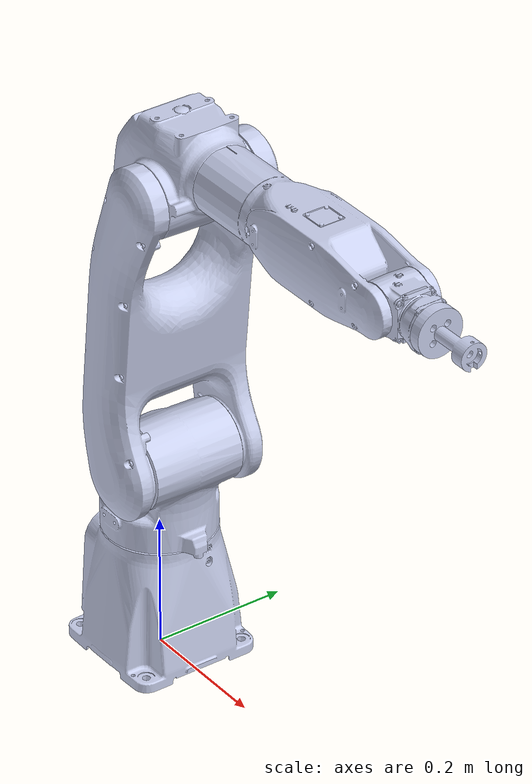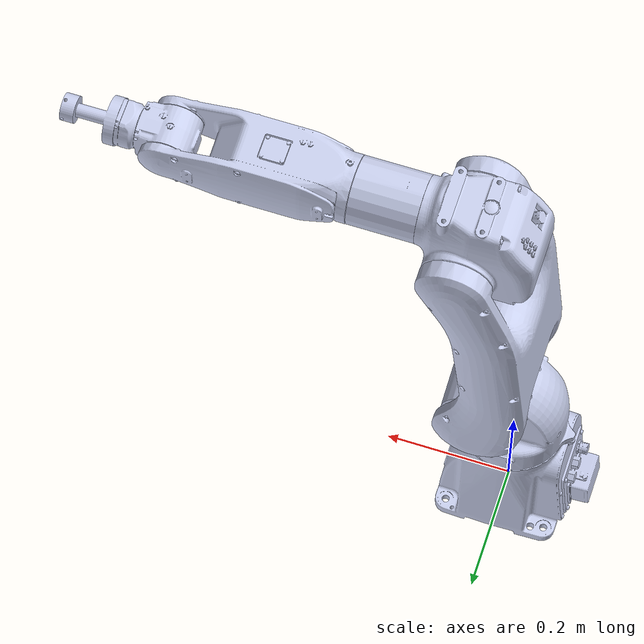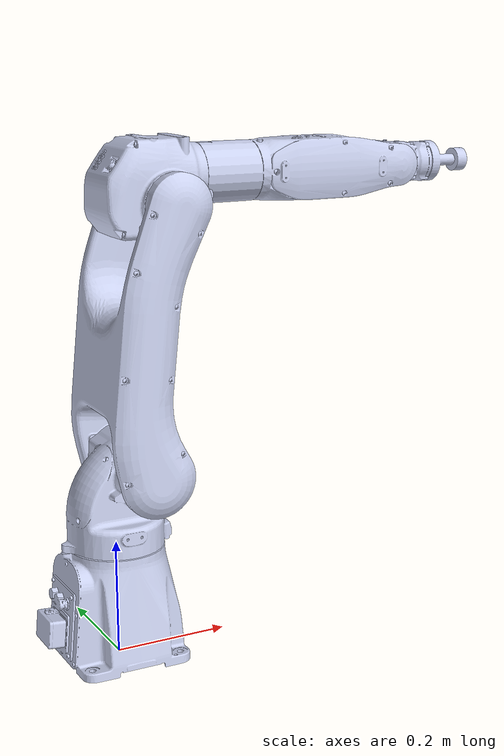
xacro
<?xml version="1.0"?>
<!--
  Offline / fake-hardware robot description:
  - Same kinematics and visuals as gp7_yaskawa.urdf.xacro
  - ros2_control uses mock_components/GenericSystem (no Gazebo plugin, no real drivers)
-->
<robot name="gp7_yaskawa" xmlns:xacro="http://www.ros.org/wiki/xacro">

  <xacro:include filename="$(find gp7_description)/urdf/common_properties.urdf.xacro"/>
  <xacro:include filename="$(find gp7_description)/urdf/arm.xacro"/>
  <xacro:include filename="$(find gp7_description)/urdf/gazebo.xacro"/>
  <xacro:include filename="$(find gp7_description)/urdf/gp7_yaskawa.ros2_control_fake.xacro"/>
  <xacro:include filename="$(find gp7_description)/urdf/gp7_yaskawa.real.xacro"/>

  <xacro:gp7_yaskawa_arm/>
  <xacro:gp7_yaskawa_gazebo/>
  <xacro:gp7_yaskawa_ros2_control_fake name="FakeSystem"/>
</robot>

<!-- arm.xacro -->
<robot xmlns:xacro="http://www.ros.org/wiki/xacro">

  <material name="gp7_blue">
    <color rgba="0.79216 0.81961 0.93333 1"/>
  </material>

  <xacro:macro name="make_link" params="name mesh mass ixx iyy izz ixy ixz iyz origin_xyz">
    <link name="${name}">
      <inertial>
        <origin xyz="${origin_xyz}" rpy="0 0 0"/>
        <mass value="${mass}"/>
        <inertia
          ixx="${ixx}"
          iyy="${iyy}"
          izz="${izz}"
          ixy="${ixy}"
          ixz="${ixz}"
          iyz="${iyz}"/>
      </inertial>

      <visual>
        <origin xyz="0 0 0" rpy="0 0 0"/>
        <geometry>
          <mesh filename="package://gp7_description/meshes/${mesh}"/>
        </geometry>
        <material name="gp7_blue"/>
      </visual>

      <collision>
        <origin xyz="0 0 0" rpy="0 0 0"/>
        <geometry>
          <mesh filename="package://gp7_description/meshes/${mesh}"/>
        </geometry>
      </collision>
    </link>
  </xacro:macro>

  <xacro:macro name="gp7_yaskawa_arm">

    <link name="world"/>

    <xacro:make_link
      name="base_link"
      mesh="base_link.STL"
      mass="5.34385766810208"
      ixx="0.0268120506162238"
      iyy="0.0298810284905347"
      izz="0.0280953042458823"
      ixy="-5.49304128768293E-06"
      ixz="-6.58204530122182E-05"
      iyz="-1.07583502357515E-05"
      origin_xyz="-0.00624897643718072 -4.06788056359388E-05 0.0878963749528747"/>

    <joint name="world_to_base" type="fixed">
      <parent link="world"/>
      <child link="base_link"/>
      <origin xyz="0 0 0" rpy="0 0 0"/>
    </joint>

    <xacro:make_link
      name="link_s"
      mesh="link_s.STL"
      mass="3.58812693054627"
      ixx="0.0176545948181882"
      iyy="0.0196883922866279"
      izz="0.0110072682998687"
      ixy="0.000292412394014776"
      ixz="-0.00271185140292341"
      iyz="0.000611148188974288"
      origin_xyz="0.011858502077693 -0.00295265214999133 0.122210117300555"/>

    <joint name="joint_s" type="revolute">
      <origin xyz="0 0 0.149" rpy="0 0 0"/>
      <parent link="base_link"/>
      <child link="link_s"/>
      <axis xyz="0 0 1"/>
      <limit lower="-2.97" upper="2.97" effort="100" velocity="100"/>
    </joint>

    <xacro:make_link
      name="link_l"
      mesh="link_l.STL"
      mass="6.8699710770859"
      ixx="0.0493549954753869"
      iyy="0.169028774801027"
      izz="0.135763392313836"
      ixy="0.0124404750037575"
      ixz="-9.21313420430245E-05"
      iyz="-0.000474992986990169"
      origin_xyz="0.1950960949914 0.00588736405257174 -0.00358464651309072"/>

    <joint name="joint_l" type="revolute">
      <origin
        xyz="0.0403301738197811 -0.000833201823887367 0.181232732594651"
        rpy="1.5707963267949 -1.5707963267949 0"/>
      <parent link="link_s"/>
      <child link="link_l"/>
      <axis xyz="0 0 -1"/>
      <limit lower="-1.13" upper="2.53" effort="100" velocity="100"/>
    </joint>

    <xacro:make_link
      name="link_u"
      mesh="link_u.STL"
      mass="2.70075909380273"
      ixx="0.00868308462329224"
      iyy="0.00807037862879338"
      izz="0.00973494540187748"
      ixy="0.00058566039461849"
      ixz="0.000160022090964061"
      iyz="0.000206151559976939"
      origin_xyz="0.0196273114678842 0.0207121098005496 0.00155842689906504"/>

    <joint name="joint_u" type="revolute">
      <origin xyz="0.442642675889132 -0.0457474009631756 0.000650000127384594" rpy="0 0 0"/>
      <parent link="link_l"/>
      <child link="link_u"/>
      <axis xyz="0 0 1"/>
      <limit lower="-1.22" upper="3.32" effort="100" velocity="100"/>
    </joint>

    <xacro:make_link
      name="link_r"
      mesh="link_r.STL"
      mass="3.08241442345227"
      ixx="0.0351496235200395"
      iyy="0.0345408127779901"
      izz="0.00466894082483317"
      ixy="6.4717867119387E-07"
      ixz="1.44146957885359E-06"
      iyz="-1.51646831364399E-05"
      origin_xyz="-3.80524387983971E-05 6.60930201229412E-05 0.171221650951751"/>

    <joint name="joint_r" type="revolute">
      <origin
        xyz="0.0399557359456865 -0.0700010032730031 -0.00142194023422651"
        rpy="1.5707963267949 0 0"/>
      <parent link="link_u"/>
      <child link="link_r"/>
      <axis xyz="3.49049884806369E-05 0 -0.999999999390821"/>
      <limit lower="-3.32" upper="3.32" effort="17" velocity="100"/>
    </joint>

    <xacro:make_link
      name="link_b"
      mesh="link_b.STL"
      mass="0.380194796719151"
      ixx="0.000448429877178545"
      iyy="0.000244636597517231"
      izz="0.000479793202750977"
      ixy="5.90644941685375E-07"
      ixz="-4.00836971238007E-07"
      iyz="1.94112752372982E-07"
      origin_xyz="0.00012138060167699 -0.01884616123928 -1.59972390146E-05"/>

    <joint name="joint_b" type="revolute">
      <origin xyz="-1.2862E-05 0 0.3685" rpy="-1.5708 0 0"/>
      <parent link="link_r"/>
      <child link="link_b"/>
      <axis xyz="0 0 1"/>
      <limit lower="-2.36" upper="2.36" effort="17" velocity="100"/>
    </joint>

    <xacro:make_link
      name="link_t"
      mesh="link_t.STL"
      mass="0.105727479258304"
      ixx="2.85659471178277E-05"
      iyy="2.8462178687687E-05"
      izz="4.5646910115595E-05"
      ixy="8.25842336712336E-10"
      ixz="-9.14025226011089E-08"
      iyz="-1.72937844893503E-08"
      origin_xyz="0.000234533533654879 2.25139143942184E-05 -0.0618042658955615"/>

    <joint name="joint_t" type="revolute">
      <origin xyz="-0.00049762 -0.1605 0" rpy="1.5708 0 0"/>
      <parent link="link_b"/>
      <child link="link_t"/>
      <axis xyz="-0.0031004 0 -1"/>
      <limit lower="-6.28" upper="6.28" effort="10" velocity="100"/>
    </joint>

    <!-- Standard tool frame (future: offset from link_t); required for TF checks world → base_link → tool0 -->
    <link name="tool0"/>
    <joint name="tool0_fixed" type="fixed">
      <origin xyz="0 0 0" rpy="0 0 0"/>
      <parent link="link_t"/>
      <child link="tool0"/>
    </joint>

  </xacro:macro>

</robot>
